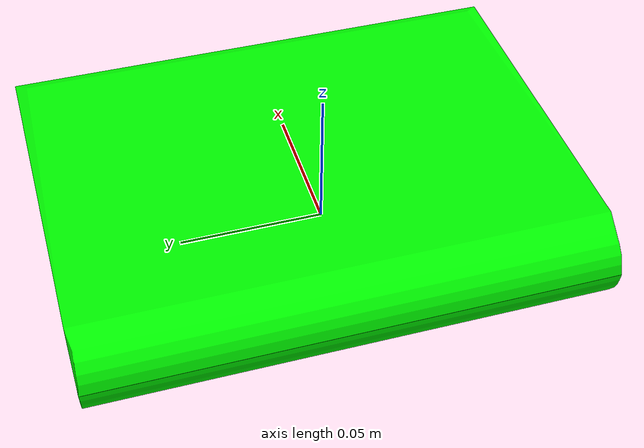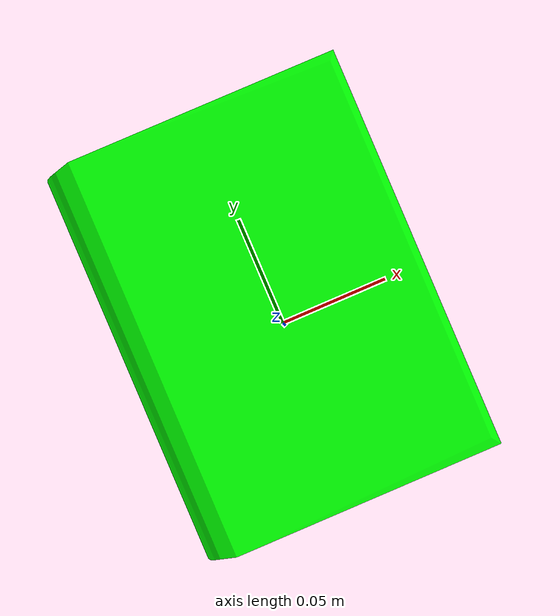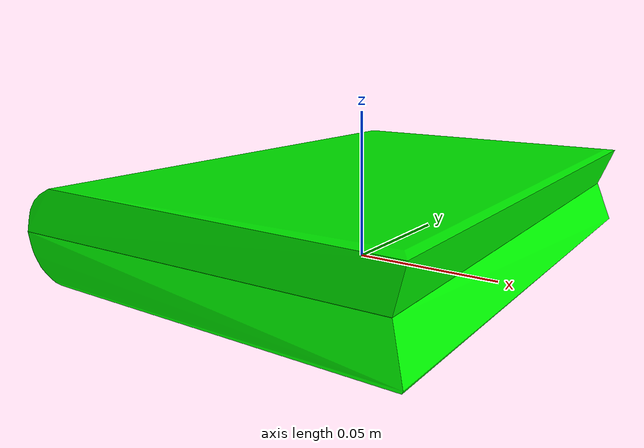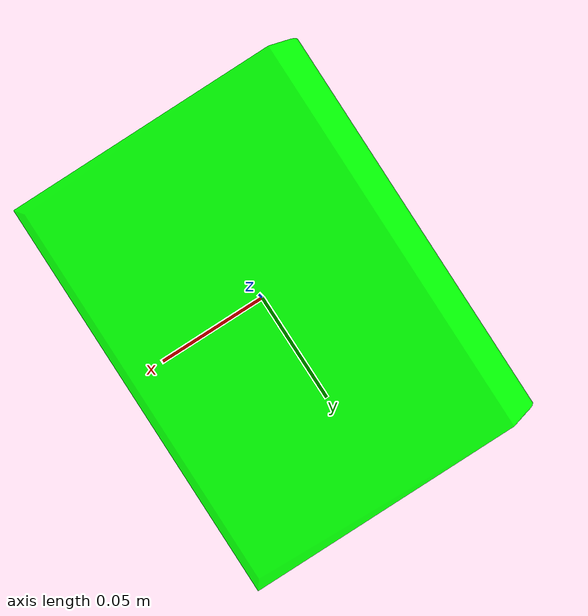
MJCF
<mujoco model="book1_red">
  <worldbody>
    <body name="book1_red">
      <body name="object">
        <geom pos="0 0 0" mesh="book1_red_0" type="mesh" friction="1 0.005 0.0001" solimp="1. 1. 0.001 0.02 6" solref="0.02 1" density="5000" rgba="0 1 0 1" group="1" condim="6"/>
        <geom pos="0 0 0" mesh="book1_red_0" type="mesh" density="5000" rgba="0 1 0 1" group="1" condim="6"/>
        <geom pos="0 0 0" mesh="book1_red_1" type="mesh" friction="1 0.005 0.0001" solimp="1. 1. 0.001 0.02 6" solref="0.02 1" density="5000" rgba="0 1 0 1" group="1" condim="6"/>
        <geom pos="0 0 0" mesh="book1_red_1" type="mesh" density="5000" rgba="0 1 0 1" group="1" condim="6"/>
      </body>
      <body name="visual">
        <geom pos="0 0 0" mesh="book1_red_0" type="mesh" rgba="0 1 0 1" conaffinity="0" contype="0" group="0" mass="0.0001"/>
        <geom pos="0 0 0" mesh="book1_red_1" type="mesh" rgba="0 1 0 1" conaffinity="0" contype="0" group="0" mass="0.0001"/>
      </body>
      <site rgba="0 0 0 0" size="0.005" pos="0 0 -0.06" name="bottom_site"/>
      <site rgba="0 0 0 0" size="0.005" pos="0 0 0.04" name="top_site"/>
      <site rgba="0 0 0 0" size="0.005" pos="0.025 0.025 0" name="horizontal_radius_site"/>
    </body>
  </worldbody>
  <asset>
    <mesh file="meshes/book1_red_0.stl" name="book1_red_0" />
    <mesh file="meshes/book1_red_1.stl" name="book1_red_1" />
  </asset>
</mujoco>
